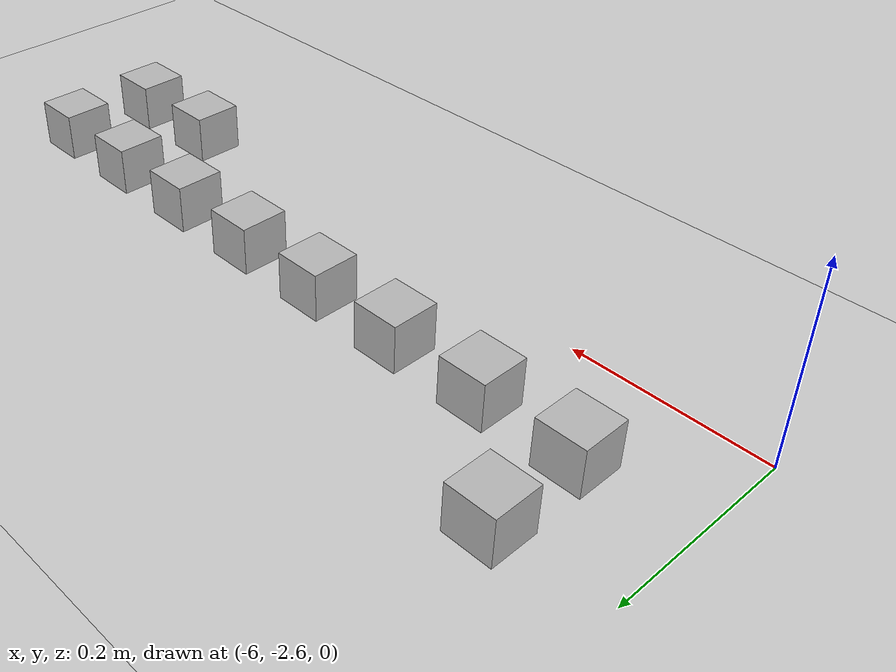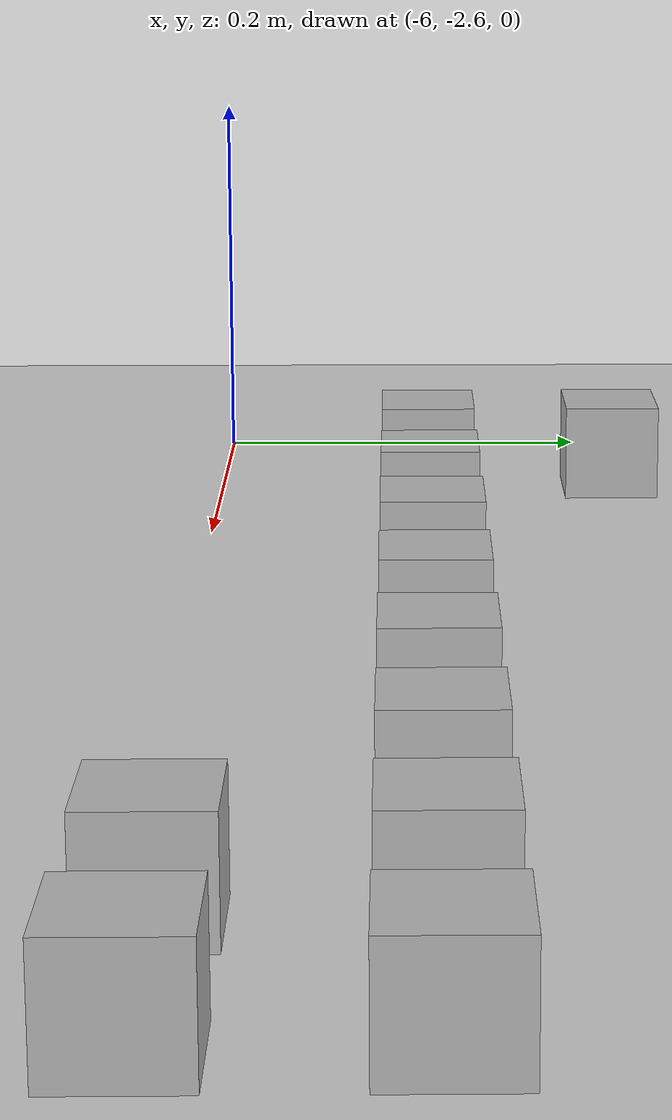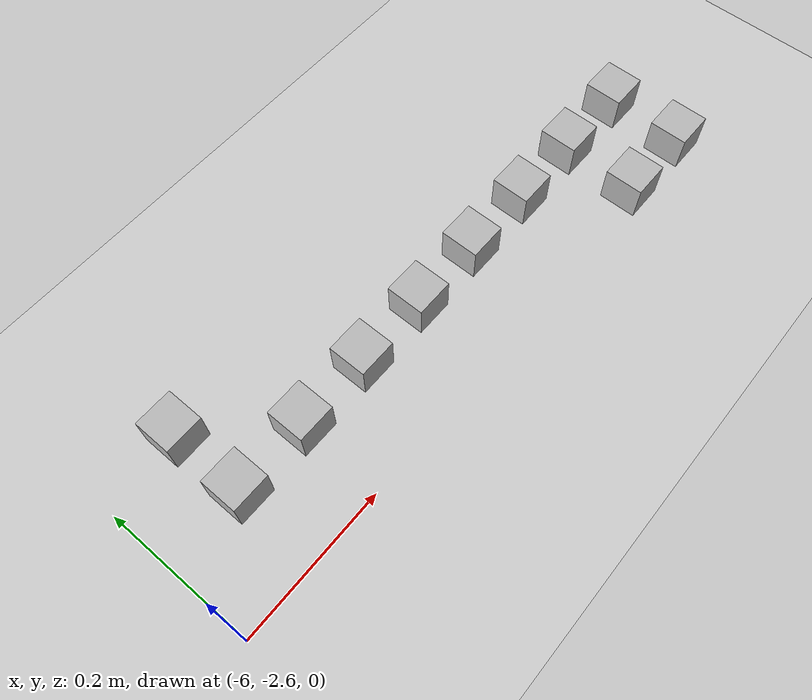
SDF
<sdf version="1.6">
 <world name="default">
  <model name="ground_plane">
   <static>1</static>
   <link name="link">
    <collision name="collision">
     <geometry><plane><normal>0 0 1</normal><size>100 100</size></plane></geometry>
     <surface><friction><ode><mu>100</mu><mu2>50</mu2></ode></friction></surface>
    </collision>
    <visual name="visual">
     <cast_shadows>0</cast_shadows>
     <geometry><plane><normal>0 0 1</normal><size>100 100</size></plane></geometry>
     <material>
      <script><uri>file://media/materials/scripts/gazebo.material</uri><name>Gazebo/Grey</name></script>
     </material>
    </visual>
   </link>
  </model>
  <model name="at6">
   <static>0</static>
   <link name="link">
    <inertial>
     <mass>0.01</mass>
     <inertia><ixx>4e-05</ixx><ixy>0</ixy><ixz>0</ixz><iyy>4e-05</iyy><iyz>0</iyz><izz>4e-05</izz></inertia>
    </inertial>
    <visual name="visual">
     <geometry><box><size>0.05 0.05 0.05</size></box></geometry>
     <material>
      <script>
       <uri>model://at0/materials/scripts</uri>
       <uri>model://at0/materials/textures</uri>
       <name>at0/Diffuse</name>
      </script>
     </material>
    </visual>
    <collision name="collision">
     <geometry><box><size>0.05 0.05 0.05</size></box></geometry>
     <surface><friction><ode><mu>0.8</mu><mu2>0.7</mu2></ode></friction></surface>
    </collision>
   </link>
   <pose>-5.2928 -2.58659 0.024993 2.9e-05 -2.9e-05 -1e-06</pose>
  </model>
  <model name="at7">
   <static>0</static>
   <link name="link">
    <inertial>
     <mass>0.01</mass>
     <inertia><ixx>4e-05</ixx><ixy>0</ixy><ixz>0</ixz><iyy>4e-05</iyy><iyz>0</iyz><izz>4e-05</izz></inertia>
    </inertial>
    <visual name="visual">
     <geometry><box><size>0.05 0.05 0.05</size></box></geometry>
     <material>
      <script>
       <uri>model://at0/materials/scripts</uri>
       <uri>model://at0/materials/textures</uri>
       <name>at0/Diffuse</name>
      </script>
     </material>
    </visual>
    <collision name="collision">
     <geometry><box><size>0.05 0.05 0.05</size></box></geometry>
     <surface><friction><ode><mu>0.8</mu><mu2>0.7</mu2></ode></friction></surface>
    </collision>
   </link>
   <pose>-5.1928 -2.58659 0.024993 2.9e-05 -2.9e-05 -1e-06</pose>
  </model>
  <model name="at8">
   <static>0</static>
   <link name="link">
    <inertial>
     <mass>0.01</mass>
     <inertia><ixx>4e-05</ixx><ixy>0</ixy><ixz>0</ixz><iyy>4e-05</iyy><iyz>0</iyz><izz>4e-05</izz></inertia>
    </inertial>
    <visual name="visual">
     <geometry><box><size>0.05 0.05 0.05</size></box></geometry>
     <material>
      <script>
       <uri>model://at0/materials/scripts</uri>
       <uri>model://at0/materials/textures</uri>
       <name>at0/Diffuse</name>
      </script>
     </material>
    </visual>
    <collision name="collision">
     <geometry><box><size>0.05 0.05 0.05</size></box></geometry>
     <surface><friction><ode><mu>0.8</mu><mu2>0.7</mu2></ode></friction></surface>
    </collision>
   </link>
   <pose>-5.8928 -2.48659 0.024993 2.9e-05 -2.9e-05 -1e-06</pose>
  </model>
  <model name="at9">
   <static>0</static>
   <link name="link">
    <inertial>
     <mass>0.01</mass>
     <inertia><ixx>4e-05</ixx><ixy>0</ixy><ixz>0</ixz><iyy>4e-05</iyy><iyz>0</iyz><izz>4e-05</izz></inertia>
    </inertial>
    <visual name="visual">
     <geometry><box><size>0.05 0.05 0.05</size></box></geometry>
     <material>
      <script>
       <uri>model://at0/materials/scripts</uri>
       <uri>model://at0/materials/textures</uri>
       <name>at0/Diffuse</name>
      </script>
     </material>
    </visual>
    <collision name="collision">
     <geometry><box><size>0.05 0.05 0.05</size></box></geometry>
     <surface><friction><ode><mu>0.8</mu><mu2>0.7</mu2></ode></friction></surface>
    </collision>
   </link>
   <pose>-5.7928 -2.48659 0.024993 2.9e-05 -2.9e-05 -1e-06</pose>
  </model>
  <model name="at10">
   <static>0</static>
   <link name="link">
    <inertial>
     <mass>0.01</mass>
     <inertia><ixx>4e-05</ixx><ixy>0</ixy><ixz>0</ixz><iyy>4e-05</iyy><iyz>0</iyz><izz>4e-05</izz></inertia>
    </inertial>
    <visual name="visual">
     <geometry><box><size>0.05 0.05 0.05</size></box></geometry>
     <material>
      <script>
       <uri>model://at0/materials/scripts</uri>
       <uri>model://at0/materials/textures</uri>
       <name>at0/Diffuse</name>
      </script>
     </material>
    </visual>
    <collision name="collision">
     <geometry><box><size>0.05 0.05 0.05</size></box></geometry>
     <surface><friction><ode><mu>0.8</mu><mu2>0.7</mu2></ode></friction></surface>
    </collision>
   </link>
   <pose>-5.6928 -2.48659 0.024993 2.9e-05 -2.9e-05 -1e-06</pose>
  </model>
  <model name="at11">
   <static>0</static>
   <link name="link">
    <inertial>
     <mass>0.01</mass>
     <inertia><ixx>4e-05</ixx><ixy>0</ixy><ixz>0</ixz><iyy>4e-05</iyy><iyz>0</iyz><izz>4e-05</izz></inertia>
    </inertial>
    <visual name="visual">
     <geometry><box><size>0.05 0.05 0.05</size></box></geometry>
     <material>
      <script>
       <uri>model://at0/materials/scripts</uri>
       <uri>model://at0/materials/textures</uri>
       <name>at0/Diffuse</name>
      </script>
     </material>
    </visual>
    <collision name="collision">
     <geometry><box><size>0.05 0.05 0.05</size></box></geometry>
     <surface><friction><ode><mu>0.8</mu><mu2>0.7</mu2></ode></friction></surface>
    </collision>
   </link>
   <pose>-5.5928 -2.48659 0.024993 2.9e-05 -2.9e-05 -1e-06</pose>
  </model>
  <model name="at12">
   <static>0</static>
   <link name="link">
    <inertial>
     <mass>0.01</mass>
     <inertia><ixx>4e-05</ixx><ixy>0</ixy><ixz>0</ixz><iyy>4e-05</iyy><iyz>0</iyz><izz>4e-05</izz></inertia>
    </inertial>
    <visual name="visual">
     <geometry><box><size>0.05 0.05 0.05</size></box></geometry>
     <material>
      <script>
       <uri>model://at0/materials/scripts</uri>
       <uri>model://at0/materials/textures</uri>
       <name>at0/Diffuse</name>
      </script>
     </material>
    </visual>
    <collision name="collision">
     <geometry><box><size>0.05 0.05 0.05</size></box></geometry>
     <surface><friction><ode><mu>0.8</mu><mu2>0.7</mu2></ode></friction></surface>
    </collision>
   </link>
   <pose>-5.4928 -2.48659 0.024993 2.9e-05 -2.9e-05 -1e-06</pose>
  </model>
  <model name="at13">
   <static>0</static>
   <link name="link">
    <inertial>
     <mass>0.01</mass>
     <inertia><ixx>4e-05</ixx><ixy>0</ixy><ixz>0</ixz><iyy>4e-05</iyy><iyz>0</iyz><izz>4e-05</izz></inertia>
    </inertial>
    <visual name="visual">
     <geometry><box><size>0.05 0.05 0.05</size></box></geometry>
     <material>
      <script>
       <uri>model://at0/materials/scripts</uri>
       <uri>model://at0/materials/textures</uri>
       <name>at0/Diffuse</name>
      </script>
     </material>
    </visual>
    <collision name="collision">
     <geometry><box><size>0.05 0.05 0.05</size></box></geometry>
     <surface><friction><ode><mu>0.8</mu><mu2>0.7</mu2></ode></friction></surface>
    </collision>
   </link>
   <pose>-5.3928 -2.48659 0.024993 2.9e-05 -2.9e-05 -1e-06</pose>
  </model>
  <model name="at14">
   <static>0</static>
   <link name="link">
    <inertial>
     <mass>0.01</mass>
     <inertia><ixx>4e-05</ixx><ixy>0</ixy><ixz>0</ixz><iyy>4e-05</iyy><iyz>0</iyz><izz>4e-05</izz></inertia>
    </inertial>
    <visual name="visual">
     <geometry><box><size>0.05 0.05 0.05</size></box></geometry>
     <material>
      <script>
       <uri>model://at0/materials/scripts</uri>
       <uri>model://at0/materials/textures</uri>
       <name>at0/Diffuse</name>
      </script>
     </material>
    </visual>
    <collision name="collision">
     <geometry><box><size>0.05 0.05 0.05</size></box></geometry>
     <surface><friction><ode><mu>0.8</mu><mu2>0.7</mu2></ode></friction></surface>
    </collision>
   </link>
   <pose>-5.2928 -2.48659 0.024993 2.9e-05 -2.9e-05 -1e-06</pose>
  </model>
  <model name="at15">
   <static>0</static>
   <link name="link">
    <inertial>
     <mass>0.01</mass>
     <inertia><ixx>4e-05</ixx><ixy>0</ixy><ixz>0</ixz><iyy>4e-05</iyy><iyz>0</iyz><izz>4e-05</izz></inertia>
    </inertial>
    <visual name="visual">
     <geometry><box><size>0.05 0.05 0.05</size></box></geometry>
     <material>
      <script>
       <uri>model://at0/materials/scripts</uri>
       <uri>model://at0/materials/textures</uri>
       <name>at0/Diffuse</name>
      </script>
     </material>
    </visual>
    <collision name="collision">
     <geometry><box><size>0.05 0.05 0.05</size></box></geometry>
     <surface><friction><ode><mu>0.8</mu><mu2>0.7</mu2></ode></friction></surface>
    </collision>
   </link>
   <pose>-5.1928 -2.48659 0.024993 2.9e-05 -2.9e-05 -1e-06</pose>
  </model>
  <model name="at16">
   <static>0</static>
   <link name="link">
    <inertial>
     <mass>0.01</mass>
     <inertia><ixx>4e-05</ixx><ixy>0</ixy><ixz>0</ixz><iyy>4e-05</iyy><iyz>0</iyz><izz>4e-05</izz></inertia>
    </inertial>
    <visual name="visual">
     <geometry><box><size>0.05 0.05 0.05</size></box></geometry>
     <material>
      <script>
       <uri>model://at0/materials/scripts</uri>
       <uri>model://at0/materials/textures</uri>
       <name>at0/Diffuse</name>
      </script>
     </material>
    </visual>
    <collision name="collision">
     <geometry><box><size>0.05 0.05 0.05</size></box></geometry>
     <surface><friction><ode><mu>0.8</mu><mu2>0.7</mu2></ode></friction></surface>
    </collision>
   </link>
   <pose>-5.8928 -2.38659 0.024993 2.9e-05 -2.9e-05 -1e-06</pose>
  </model>
 </world>
</sdf>
